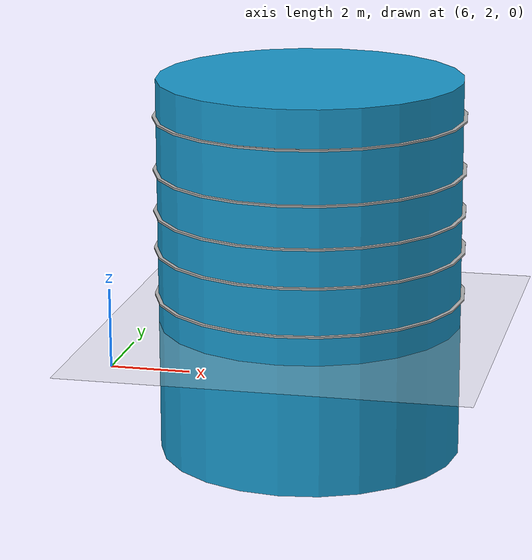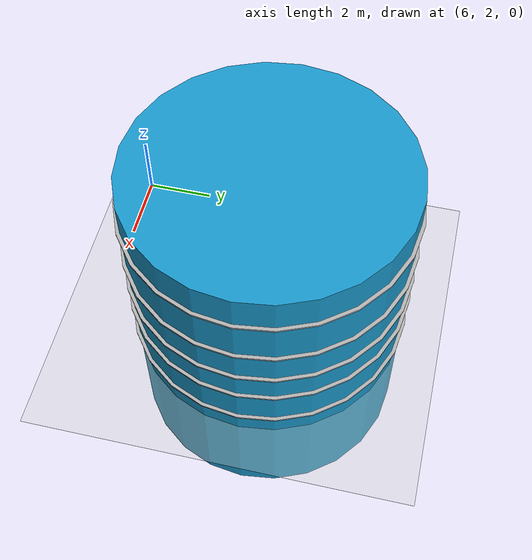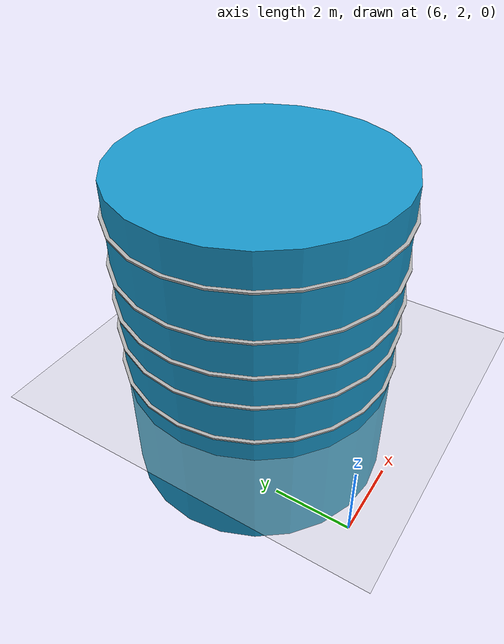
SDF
<?xml version="1.0" ?>
<sdf version="1.7">
   <world name="tank_world">
   <gravity>0 0 -9.81</gravity>
<!--Tells Gazebo to use the ODE physics engine (a popular rigid-body physics solver).
Other engines exist (like DART, Bullet), but ODE is the default and stable. -->
<physics name="default_physics" type="ode">
    <!-- This is the simulation time step in  samller step more accurate seconds.-->
<max_step_size>0.001</max_step_size>
<real_time_factor>1.0</real_time_factor>
<real_time_update_rate>1000</real_time_update_rate>
<contact_surface_layer>0.001</contact_surface_layer>

</physics>
<!-- This is give you a  floor so robot doesnt fall into nothing -->
 <!--  This is give you a  floor so robot doesnt fall into nothing  -->
 <include>
    <uri>model://ground_plane</uri>
 </include>

     <include>
      <uri>model://sun</uri>
    </include>

    <!-- ADDING  a  Cylindericla tank  model means an object -->
     <model name="cylindrical_tank">
        <static>true</static> <!-- it is fixed not dtnimic -->
        <pose>10 7 1.5 0 0 0 </pose>
        <!-- Add a cylinder geometry-->
         <link name="tank_link">

           <collision name="tank_collision">
            <!-- contact Paramter-->

             <surface>
               <contact>
                 <ode/>
                </contact>
                <!-- Friction Parameter-->
                 <friction>
                   <ode>
                 <mu>3.0</mu>
                  <mu2>3.0</mu2>
                       </ode>
                      </friction>

              </surface>

              <geometry>

                <cylinder>
                  <radius>4.0</radius>
                  <length>10.0</length>
                </cylinder>
              </geometry>

                <sensor name="tank_contact_sensor" type="contact">
            <always_on>true</always_on>
            <update_rate>50</update_rate>
            <contact>
            <collision>tank_collision</collision>
            </contact>
            </sensor>

            </collision>

            <visual name="tank_visual">
                <geometry>

                  <cylinder>
      <radius>4.0</radius>
      <length>10.0</length>
    </cylinder>

                </geometry>
                <material>
  <ambient>0.1 0.6 0.8 1</ambient>
  <diffuse>0.1 0.6 0.8 1</diffuse>
  <specular>0.2 0.2 0.2 1</specular>
</material>

            </visual>

         </link>

     </model>

     <!-- rings in  cylider -->

     <model name="weld_ring_1">
      <static>true</static>
      <pose>10 7 2.0 0 0 0 </pose>
      <link name="ring_link">
        <collision name="ring_collision">
          <geometry>
            <cylinder>
              <radius>4.1</radius>
              <length>0.05</length>
            </cylinder>
          </geometry>
          <surface>
    <friction>
        <ode>
            <mu>3.0</mu>      <!-- main friction -->
            <mu2>3.0</mu2>    <!-- secondary friction -->
        </ode>
    </friction>
    <contact>
        <ode/>
    </contact>
</surface>

        </collision>
        <visual name="ring_visual">
          <geometry>
            <cylinder>
              <radius>4.1</radius>
              <length>0.05</length>
            </cylinder>

          </geometry>
          <material>
            <ambient>0.7 0.7 0.7 1</ambient>
            <diffuse>0.7 0.7 0.7 1</diffuse>
          </material>
        </visual>
      </link>
     </model>

     <model name="weld_ring_2">
      <static>true</static>
      <pose>10 7 3.0 0 0 0 </pose>
      <link name="ring_link">
        <collision name="ring_collision">
          <geometry>
            <cylinder>
              <radius>4.1</radius>
              <length>0.05</length>
            </cylinder>
          </geometry>
          <surface>
    <friction>
        <ode>
            <mu>3.0</mu>      <!-- main friction -->
            <mu2>3.0</mu2>    <!-- secondary friction -->
        </ode>
    </friction>
    <contact>
        <ode/>
    </contact>
</surface>

        </collision>
        <visual name="ring_visual">
          <geometry>
            <cylinder>
              <radius>4.1</radius>
              <length>0.05</length>
            </cylinder>

          </geometry>
          <material>
            <ambient>0.7 0.7 0.7 1</ambient>
            <diffuse>0.7 0.7 0.7 1</diffuse>
          </material>
        </visual>
      </link>
     </model>

     <model name="weld_ring_3">
      <static>true</static>
      <pose>10 7 0.75 0 0 0 </pose>
      <link name="ring_link">
        <collision name="ring_collision">
          <geometry>
            <cylinder>
              <radius>4.1</radius>
              <length>0.05</length>
            </cylinder>
          </geometry>
          <surface>
    <friction>
        <ode>
            <mu>3.0</mu>      <!-- main friction -->
            <mu2>3.0</mu2>    <!-- secondary friction -->
        </ode>
    </friction>
    <contact>
        <ode/>
    </contact>
</surface>

        </collision>
        <visual name="ring_visual">
          <geometry>
            <cylinder>
              <radius>4.1</radius>
              <length>0.05</length>
            </cylinder>

          </geometry>
          <material>
            <ambient>0.7 0.7 0.7 1</ambient>
            <diffuse>0.7 0.7 0.7 1</diffuse>
          </material>
        </visual>
      </link>
     </model>

     <model name="weld_ring_4">
      <static>true</static>
      <pose>10 7 4.1 0 0 0 </pose>
      <link name="ring_link">
        <collision name="ring_collision">
          <geometry>
            <cylinder>
              <radius>4.1</radius>
              <length>0.05</length>
            </cylinder>
          </geometry>
          <surface>
    <friction>
        <ode>
            <mu>3.0</mu>      <!-- main friction -->
            <mu2>3.0</mu2>    <!-- secondary friction -->
        </ode>
    </friction>
    <contact>
        <ode/>
    </contact>
</surface>

        </collision>
        <visual name="ring_visual">
          <geometry>
            <cylinder>
              <radius>4.1</radius>
              <length>0.05</length>
            </cylinder>

          </geometry>
          <material>
            <ambient>0.7 0.7 0.7 1</ambient>
            <diffuse>0.7 0.7 0.7 1</diffuse>
          </material>
        </visual>
      </link>
     </model>

     <model name="weld_ring_5">
      <static>true</static>
      <pose>10 7 5.50 0 0 0 </pose>
      <link name="ring_link">
        <collision name="ring_collision">
          <geometry>
            <cylinder>
              <radius>4.1</radius>
              <length>0.05</length>
            </cylinder>
          </geometry>
          <surface>
    <friction>
        <ode>
            <mu>3.0</mu>      <!-- main friction -->
            <mu2>3.0</mu2>    <!-- secondary friction -->
        </ode>
    </friction>
    <contact>
        <ode/>
    </contact>
</surface>

        </collision>
        <visual name="ring_visual">
          <geometry>
            <cylinder>
              <radius>4.1</radius>
              <length>0.05</length>
            </cylinder>

          </geometry>
          <material>
            <ambient>0.7 0.7 0.7 1</ambient>
            <diffuse>0.7 0.7 0.7 1</diffuse>
          </material>
        </visual>
      </link>
     </model>

     </world>
     </sdf>
